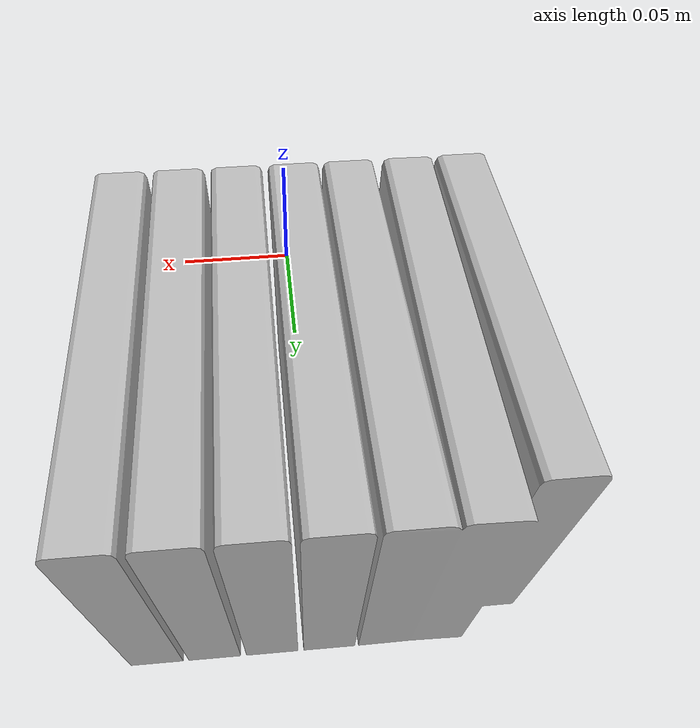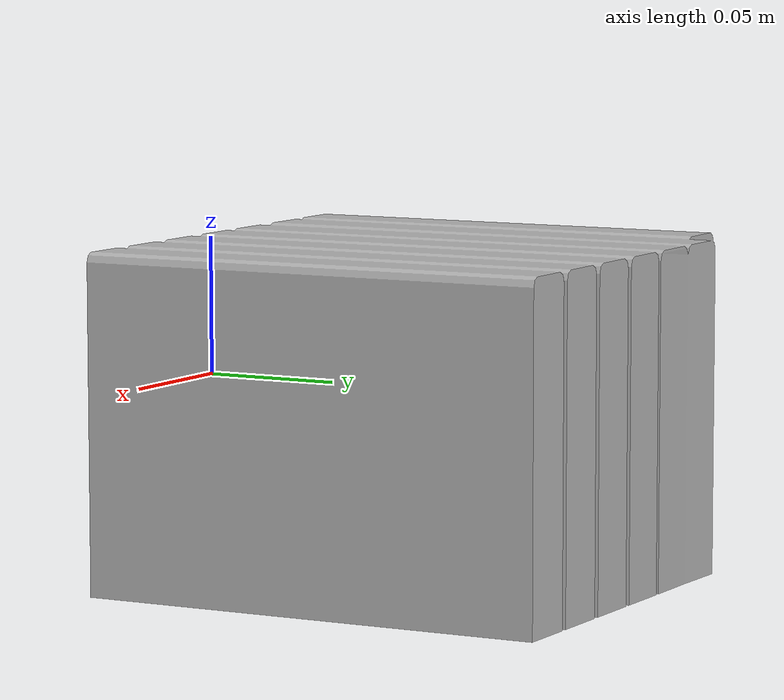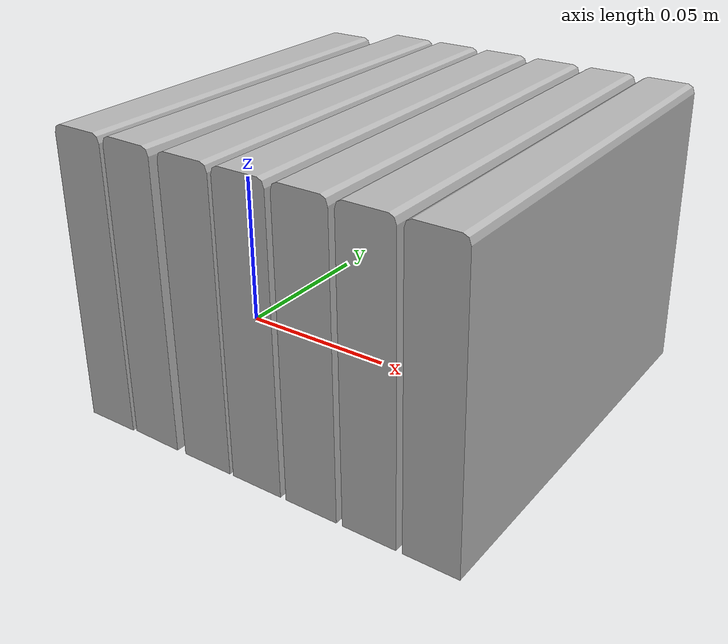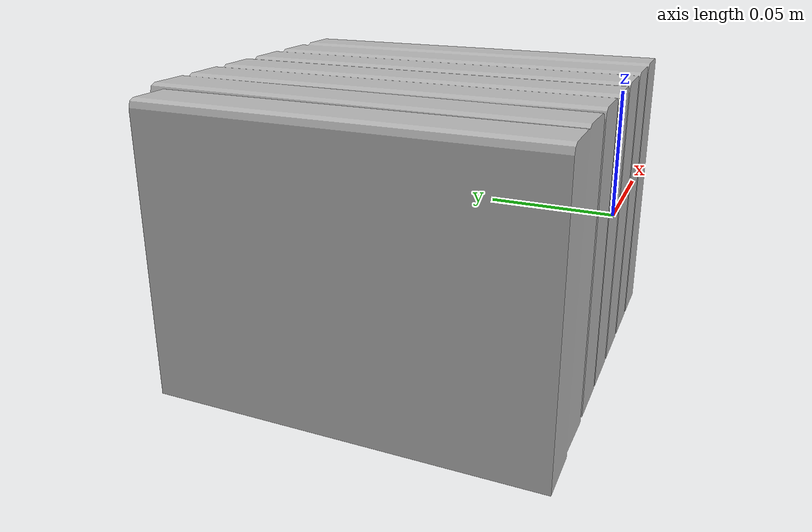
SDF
<?xml version="1.0" ?>
<sdf version="1.4">
  <model name="shelf1_book1_v5">
    <link name="body">
      <pose>0 0 0 0 0 0</pose>
      <inertial>
        <pose>  -0.003426   0.084118  -0.009572 0 0 0</pose>
        <mass>0.5</mass>
        <inertia>
          <ixx>0.01</ixx>
          <ixy>0</ixy>
          <ixz>0</ixz>
          <iyy>0.01</iyy>
          <iyz>0</iyz>
          <izz>0.01</izz>
        </inertia>
      </inertial>
      <collision name="collision">
        <geometry>
          <mesh>
            <uri>model://bookshelf/shelf1_items/book1_v5/book1_v5.dae</uri>
          </mesh>
        </geometry>
      </collision>
      <visual name="visual">
        <geometry>
          <mesh>
            <uri>model://bookshelf/shelf1_items/book1_v5/book1_v5.dae</uri>
          </mesh>
        </geometry>
      </visual>
    </link>
  </model>
</sdf>
